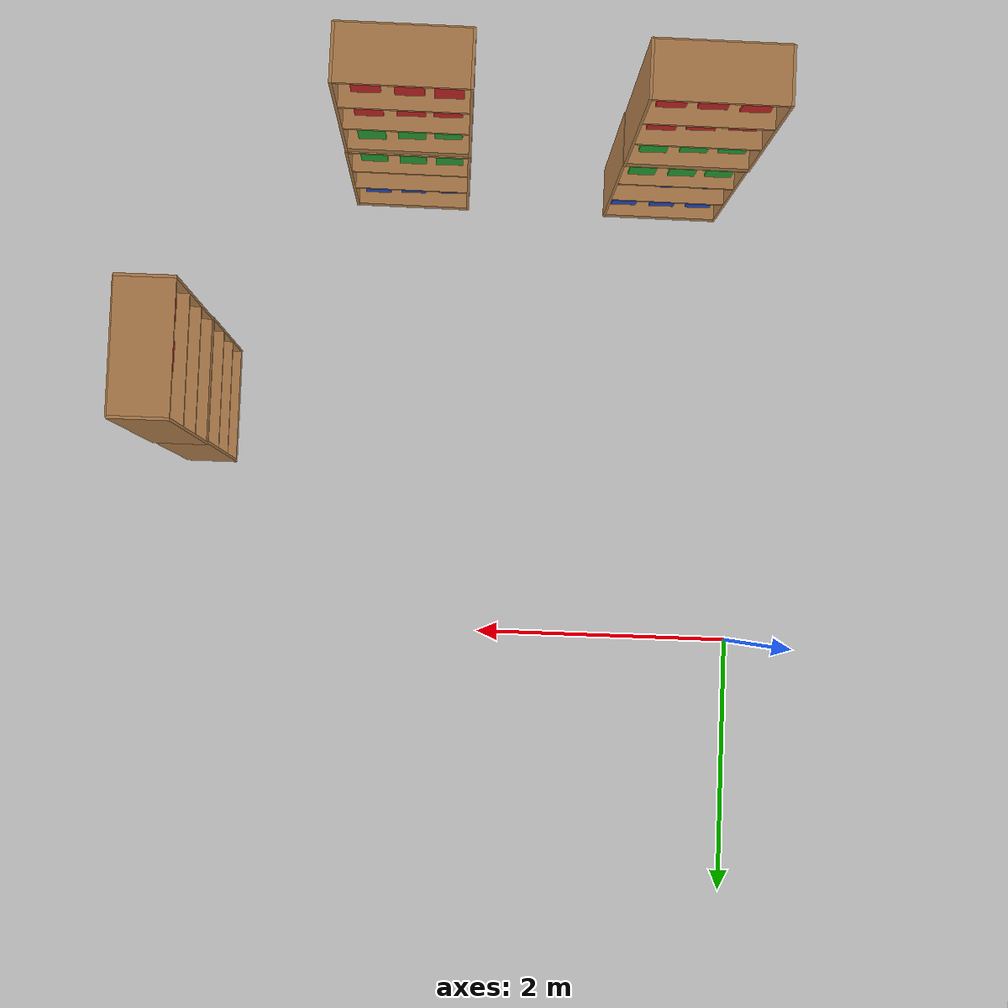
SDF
<sdf version="1.6">
 <world name="default">
  <model name="ground_plane">
   <static>1</static>
   <link name="link">
    <collision name="collision">
     <geometry><plane><normal>0 0 1</normal><size>100 100</size></plane></geometry>
     <surface><friction><ode><mu>100</mu><mu2>50</mu2></ode></friction></surface>
    </collision>
    <visual name="visual">
     <cast_shadows>0</cast_shadows>
     <geometry><plane><normal>0 0 1</normal><size>100 100</size></plane></geometry>
     <material>
      <script><uri>file://media/materials/scripts/gazebo.material</uri><name>Gazebo/Grey</name></script>
     </material>
    </visual>
   </link>
  </model>
  <model name="bookshelf_5">
   <static>1</static>
   <link name="link">
    <inertial><mass>1</mass></inertial>
    <collision name="back">
     <pose>0 0.005 0.6 0 -0 0</pose>
     <geometry><box><size>0.9 0.01 1.2</size></box></geometry>
    </collision>
    <visual name="visual1">
     <pose>0 0.005 0.6 0 -0 0</pose>
     <geometry><box><size>0.9 0.01 1.2</size></box></geometry>
     <material>
      <script><uri>file://media/materials/scripts/gazebo.material</uri><name>Gazebo/Wood</name></script>
     </material>
    </visual>
    <collision name="left_side">
     <pose>0.45 -0.195 0.6 0 -0 0</pose>
     <geometry><box><size>0.02 0.4 1.2</size></box></geometry>
    </collision>
    <visual name="visual2">
     <pose>0.45 -0.195 0.6 0 -0 0</pose>
     <geometry><box><size>0.02 0.4 1.2</size></box></geometry>
     <material>
      <script><uri>file://media/materials/scripts/gazebo.material</uri><name>Gazebo/Wood</name></script>
     </material>
    </visual>
    <collision name="right_side">
     <pose>-0.45 -0.195 0.6 0 -0 0</pose>
     <geometry><box><size>0.02 0.4 1.2</size></box></geometry>
    </collision>
    <visual name="visual3">
     <pose>-0.45 -0.195 0.6 0 -0 0</pose>
     <geometry><box><size>0.02 0.4 1.2</size></box></geometry>
     <material>
      <script><uri>file://media/materials/scripts/gazebo.material</uri><name>Gazebo/Wood</name></script>
     </material>
    </visual>
    <collision name="bottom">
     <pose>0 -0.195 0.03 0 -0 0</pose>
     <geometry><box><size>0.88 0.4 0.06</size></box></geometry>
    </collision>
    <visual name="visual4">
     <pose>0 -0.195 0.03 0 -0 0</pose>
     <geometry><box><size>0.88 0.4 0.06</size></box></geometry>
     <material>
      <script><uri>file://media/materials/scripts/gazebo.material</uri><name>Gazebo/Wood</name></script>
     </material>
    </visual>
    <collision name="top">
     <pose>0 -0.195 1.19 0 -0 0</pose>
     <geometry><box><size>0.88 0.4 0.02</size></box></geometry>
    </collision>
    <visual name="visual5">
     <pose>0 -0.195 1.19 0 -0 0</pose>
     <geometry><box><size>0.88 0.4 0.02</size></box></geometry>
     <material>
      <script><uri>file://media/materials/scripts/gazebo.material</uri><name>Gazebo/Wood</name></script>
     </material>
    </visual>
    <collision name="low_shelf">
     <pose>0 -0.195 0.43 0 -0 0</pose>
     <geometry><box><size>0.88 0.4 0.02</size></box></geometry>
    </collision>
    <visual name="visual6">
     <pose>0 -0.195 0.43 0 -0 0</pose>
     <geometry><box><size>0.88 0.4 0.02</size></box></geometry>
     <material>
      <script><uri>file://media/materials/scripts/gazebo.material</uri><name>Gazebo/Wood</name></script>
     </material>
    </visual>
    <collision name="high_shelf">
     <pose>0 -0.195 0.8 0 -0 0</pose>
     <geometry><box><size>0.88 0.4 0.02</size></box></geometry>
    </collision>
    <visual name="visual7">
     <pose>0 -0.195 0.8 0 -0 0</pose>
     <geometry><box><size>0.88 0.4 0.02</size></box></geometry>
     <material>
      <script><uri>file://media/materials/scripts/gazebo.material</uri><name>Gazebo/Wood</name></script>
     </material>
    </visual>
   </link>
   <pose>2.65151 -3.85953 0 0 -0 3.12955</pose>
  </model>
  <model name="bookshelf_5_clone_0">
   <static>1</static>
   <link name="link">
    <inertial><mass>1</mass></inertial>
    <collision name="back">
     <pose>0 0.005 0.6 0 -0 0</pose>
     <geometry><box><size>0.9 0.01 1.2</size></box></geometry>
    </collision>
    <visual name="visual1">
     <pose>0 0.005 0.6 0 -0 0</pose>
     <geometry><box><size>0.9 0.01 1.2</size></box></geometry>
     <material>
      <script><uri>file://media/materials/scripts/gazebo.material</uri><name>Gazebo/Wood</name></script>
     </material>
    </visual>
    <collision name="left_side">
     <pose>0.45 -0.195 0.6 0 -0 0</pose>
     <geometry><box><size>0.02 0.4 1.2</size></box></geometry>
    </collision>
    <visual name="visual2">
     <pose>0.45 -0.195 0.6 0 -0 0</pose>
     <geometry><box><size>0.02 0.4 1.2</size></box></geometry>
     <material>
      <script><uri>file://media/materials/scripts/gazebo.material</uri><name>Gazebo/Wood</name></script>
     </material>
    </visual>
    <collision name="right_side">
     <pose>-0.45 -0.195 0.6 0 -0 0</pose>
     <geometry><box><size>0.02 0.4 1.2</size></box></geometry>
    </collision>
    <visual name="visual3">
     <pose>-0.45 -0.195 0.6 0 -0 0</pose>
     <geometry><box><size>0.02 0.4 1.2</size></box></geometry>
     <material>
      <script><uri>file://media/materials/scripts/gazebo.material</uri><name>Gazebo/Wood</name></script>
     </material>
    </visual>
    <collision name="bottom">
     <pose>0 -0.195 0.03 0 -0 0</pose>
     <geometry><box><size>0.88 0.4 0.06</size></box></geometry>
    </collision>
    <visual name="visual4">
     <pose>0 -0.195 0.03 0 -0 0</pose>
     <geometry><box><size>0.88 0.4 0.06</size></box></geometry>
     <material>
      <script><uri>file://media/materials/scripts/gazebo.material</uri><name>Gazebo/Wood</name></script>
     </material>
    </visual>
    <collision name="top">
     <pose>0 -0.195 1.19 0 -0 0</pose>
     <geometry><box><size>0.88 0.4 0.02</size></box></geometry>
    </collision>
    <visual name="visual5">
     <pose>0 -0.195 1.19 0 -0 0</pose>
     <geometry><box><size>0.88 0.4 0.02</size></box></geometry>
     <material>
      <script><uri>file://media/materials/scripts/gazebo.material</uri><name>Gazebo/Wood</name></script>
     </material>
    </visual>
    <collision name="low_shelf">
     <pose>0 -0.195 0.43 0 -0 0</pose>
     <geometry><box><size>0.88 0.4 0.02</size></box></geometry>
    </collision>
    <visual name="visual6">
     <pose>0 -0.195 0.43 0 -0 0</pose>
     <geometry><box><size>0.88 0.4 0.02</size></box></geometry>
     <material>
      <script><uri>file://media/materials/scripts/gazebo.material</uri><name>Gazebo/Wood</name></script>
     </material>
    </visual>
    <collision name="high_shelf">
     <pose>0 -0.195 0.8 0 -0 0</pose>
     <geometry><box><size>0.88 0.4 0.02</size></box></geometry>
    </collision>
    <visual name="visual7">
     <pose>0 -0.195 0.8 0 -0 0</pose>
     <geometry><box><size>0.88 0.4 0.02</size></box></geometry>
     <material>
      <script><uri>file://media/materials/scripts/gazebo.material</uri><name>Gazebo/Wood</name></script>
     </material>
    </visual>
   </link>
   <pose>0.624398 -3.83719 0 0 -0 3.12955</pose>
  </model>
  <model name="bookshelf_5_clone">
   <static>1</static>
   <link name="link">
    <inertial><mass>1</mass></inertial>
    <collision name="back">
     <pose>0 0.005 0.6 0 -0 0</pose>
     <geometry><box><size>0.9 0.01 1.2</size></box></geometry>
    </collision>
    <visual name="visual1">
     <pose>0 0.005 0.6 0 -0 0</pose>
     <geometry><box><size>0.9 0.01 1.2</size></box></geometry>
     <material>
      <script><uri>file://media/materials/scripts/gazebo.material</uri><name>Gazebo/Wood</name></script>
     </material>
    </visual>
    <collision name="left_side">
     <pose>0.45 -0.195 0.6 0 -0 0</pose>
     <geometry><box><size>0.02 0.4 1.2</size></box></geometry>
    </collision>
    <visual name="visual2">
     <pose>0.45 -0.195 0.6 0 -0 0</pose>
     <geometry><box><size>0.02 0.4 1.2</size></box></geometry>
     <material>
      <script><uri>file://media/materials/scripts/gazebo.material</uri><name>Gazebo/Wood</name></script>
     </material>
    </visual>
    <collision name="right_side">
     <pose>-0.45 -0.195 0.6 0 -0 0</pose>
     <geometry><box><size>0.02 0.4 1.2</size></box></geometry>
    </collision>
    <visual name="visual3">
     <pose>-0.45 -0.195 0.6 0 -0 0</pose>
     <geometry><box><size>0.02 0.4 1.2</size></box></geometry>
     <material>
      <script><uri>file://media/materials/scripts/gazebo.material</uri><name>Gazebo/Wood</name></script>
     </material>
    </visual>
    <collision name="bottom">
     <pose>0 -0.195 0.03 0 -0 0</pose>
     <geometry><box><size>0.88 0.4 0.06</size></box></geometry>
    </collision>
    <visual name="visual4">
     <pose>0 -0.195 0.03 0 -0 0</pose>
     <geometry><box><size>0.88 0.4 0.06</size></box></geometry>
     <material>
      <script><uri>file://media/materials/scripts/gazebo.material</uri><name>Gazebo/Wood</name></script>
     </material>
    </visual>
    <collision name="top">
     <pose>0 -0.195 1.19 0 -0 0</pose>
     <geometry><box><size>0.88 0.4 0.02</size></box></geometry>
    </collision>
    <visual name="visual5">
     <pose>0 -0.195 1.19 0 -0 0</pose>
     <geometry><box><size>0.88 0.4 0.02</size></box></geometry>
     <material>
      <script><uri>file://media/materials/scripts/gazebo.material</uri><name>Gazebo/Wood</name></script>
     </material>
    </visual>
    <collision name="low_shelf">
     <pose>0 -0.195 0.43 0 -0 0</pose>
     <geometry><box><size>0.88 0.4 0.02</size></box></geometry>
    </collision>
    <visual name="visual6">
     <pose>0 -0.195 0.43 0 -0 0</pose>
     <geometry><box><size>0.88 0.4 0.02</size></box></geometry>
     <material>
      <script><uri>file://media/materials/scripts/gazebo.material</uri><name>Gazebo/Wood</name></script>
     </material>
    </visual>
    <collision name="high_shelf">
     <pose>0 -0.195 0.8 0 -0 0</pose>
     <geometry><box><size>0.88 0.4 0.02</size></box></geometry>
    </collision>
    <visual name="visual7">
     <pose>0 -0.195 0.8 0 -0 0</pose>
     <geometry><box><size>0.88 0.4 0.02</size></box></geometry>
     <material>
      <script><uri>file://media/materials/scripts/gazebo.material</uri><name>Gazebo/Wood</name></script>
     </material>
    </visual>
   </link>
   <pose>2.64795 -3.86432 1.21139 0 -0 3.12955</pose>
  </model>
  <model name="bookshelf_5_clone_clone">
   <static>1</static>
   <link name="link">
    <inertial><mass>1</mass></inertial>
    <collision name="back">
     <pose>0 0.005 0.6 0 -0 0</pose>
     <geometry><box><size>0.9 0.01 1.2</size></box></geometry>
    </collision>
    <visual name="visual1">
     <pose>0 0.005 0.6 0 -0 0</pose>
     <geometry><box><size>0.9 0.01 1.2</size></box></geometry>
     <material>
      <script><uri>file://media/materials/scripts/gazebo.material</uri><name>Gazebo/Wood</name></script>
     </material>
    </visual>
    <collision name="left_side">
     <pose>0.45 -0.195 0.6 0 -0 0</pose>
     <geometry><box><size>0.02 0.4 1.2</size></box></geometry>
    </collision>
    <visual name="visual2">
     <pose>0.45 -0.195 0.6 0 -0 0</pose>
     <geometry><box><size>0.02 0.4 1.2</size></box></geometry>
     <material>
      <script><uri>file://media/materials/scripts/gazebo.material</uri><name>Gazebo/Wood</name></script>
     </material>
    </visual>
    <collision name="right_side">
     <pose>-0.45 -0.195 0.6 0 -0 0</pose>
     <geometry><box><size>0.02 0.4 1.2</size></box></geometry>
    </collision>
    <visual name="visual3">
     <pose>-0.45 -0.195 0.6 0 -0 0</pose>
     <geometry><box><size>0.02 0.4 1.2</size></box></geometry>
     <material>
      <script><uri>file://media/materials/scripts/gazebo.material</uri><name>Gazebo/Wood</name></script>
     </material>
    </visual>
    <collision name="bottom">
     <pose>0 -0.195 0.03 0 -0 0</pose>
     <geometry><box><size>0.88 0.4 0.06</size></box></geometry>
    </collision>
    <visual name="visual4">
     <pose>0 -0.195 0.03 0 -0 0</pose>
     <geometry><box><size>0.88 0.4 0.06</size></box></geometry>
     <material>
      <script><uri>file://media/materials/scripts/gazebo.material</uri><name>Gazebo/Wood</name></script>
     </material>
    </visual>
    <collision name="top">
     <pose>0 -0.195 1.19 0 -0 0</pose>
     <geometry><box><size>0.88 0.4 0.02</size></box></geometry>
    </collision>
    <visual name="visual5">
     <pose>0 -0.195 1.19 0 -0 0</pose>
     <geometry><box><size>0.88 0.4 0.02</size></box></geometry>
     <material>
      <script><uri>file://media/materials/scripts/gazebo.material</uri><name>Gazebo/Wood</name></script>
     </material>
    </visual>
    <collision name="low_shelf">
     <pose>0 -0.195 0.43 0 -0 0</pose>
     <geometry><box><size>0.88 0.4 0.02</size></box></geometry>
    </collision>
    <visual name="visual6">
     <pose>0 -0.195 0.43 0 -0 0</pose>
     <geometry><box><size>0.88 0.4 0.02</size></box></geometry>
     <material>
      <script><uri>file://media/materials/scripts/gazebo.material</uri><name>Gazebo/Wood</name></script>
     </material>
    </visual>
    <collision name="high_shelf">
     <pose>0 -0.195 0.8 0 -0 0</pose>
     <geometry><box><size>0.88 0.4 0.02</size></box></geometry>
    </collision>
    <visual name="visual7">
     <pose>0 -0.195 0.8 0 -0 0</pose>
     <geometry><box><size>0.88 0.4 0.02</size></box></geometry>
     <material>
      <script><uri>file://media/materials/scripts/gazebo.material</uri><name>Gazebo/Wood</name></script>
     </material>
    </visual>
   </link>
   <pose>0.620317 -3.82873 1.21139 0 -0 3.12955</pose>
  </model>
  <model name="bookshelf_4_clone_clone">
   <static>1</static>
   <link name="link">
    <inertial><mass>1</mass></inertial>
    <collision name="back">
     <pose>0 0.005 0.6 0 -0 0</pose>
     <geometry><box><size>0.9 0.01 1.2</size></box></geometry>
    </collision>
    <visual name="visual1">
     <pose>0 0.005 0.6 0 -0 0</pose>
     <geometry><box><size>0.9 0.01 1.2</size></box></geometry>
     <material>
      <script><uri>file://media/materials/scripts/gazebo.material</uri><name>Gazebo/Wood</name></script>
     </material>
    </visual>
    <collision name="left_side">
     <pose>0.45 -0.195 0.6 0 -0 0</pose>
     <geometry><box><size>0.02 0.4 1.2</size></box></geometry>
    </collision>
    <visual name="visual2">
     <pose>0.45 -0.195 0.6 0 -0 0</pose>
     <geometry><box><size>0.02 0.4 1.2</size></box></geometry>
     <material>
      <script><uri>file://media/materials/scripts/gazebo.material</uri><name>Gazebo/Wood</name></script>
     </material>
    </visual>
    <collision name="right_side">
     <pose>-0.45 -0.195 0.6 0 -0 0</pose>
     <geometry><box><size>0.02 0.4 1.2</size></box></geometry>
    </collision>
    <visual name="visual3">
     <pose>-0.45 -0.195 0.6 0 -0 0</pose>
     <geometry><box><size>0.02 0.4 1.2</size></box></geometry>
     <material>
      <script><uri>file://media/materials/scripts/gazebo.material</uri><name>Gazebo/Wood</name></script>
     </material>
    </visual>
    <collision name="bottom">
     <pose>0 -0.195 0.03 0 -0 0</pose>
     <geometry><box><size>0.88 0.4 0.06</size></box></geometry>
    </collision>
    <visual name="visual4">
     <pose>0 -0.195 0.03 0 -0 0</pose>
     <geometry><box><size>0.88 0.4 0.06</size></box></geometry>
     <material>
      <script><uri>file://media/materials/scripts/gazebo.material</uri><name>Gazebo/Wood</name></script>
     </material>
    </visual>
    <collision name="top">
     <pose>0 -0.195 1.19 0 -0 0</pose>
     <geometry><box><size>0.88 0.4 0.02</size></box></geometry>
    </collision>
    <visual name="visual5">
     <pose>0 -0.195 1.19 0 -0 0</pose>
     <geometry><box><size>0.88 0.4 0.02</size></box></geometry>
     <material>
      <script><uri>file://media/materials/scripts/gazebo.material</uri><name>Gazebo/Wood</name></script>
     </material>
    </visual>
    <collision name="low_shelf">
     <pose>0 -0.195 0.43 0 -0 0</pose>
     <geometry><box><size>0.88 0.4 0.02</size></box></geometry>
    </collision>
    <visual name="visual6">
     <pose>0 -0.195 0.43 0 -0 0</pose>
     <geometry><box><size>0.88 0.4 0.02</size></box></geometry>
     <material>
      <script><uri>file://media/materials/scripts/gazebo.material</uri><name>Gazebo/Wood</name></script>
     </material>
    </visual>
    <collision name="high_shelf">
     <pose>0 -0.195 0.8 0 -0 0</pose>
     <geometry><box><size>0.88 0.4 0.02</size></box></geometry>
    </collision>
    <visual name="visual7">
     <pose>0 -0.195 0.8 0 -0 0</pose>
     <geometry><box><size>0.88 0.4 0.02</size></box></geometry>
     <material>
      <script><uri>file://media/materials/scripts/gazebo.material</uri><name>Gazebo/Wood</name></script>
     </material>
    </visual>
   </link>
   <pose>4.40573 -1.76165 0 0 0 -1.5727</pose>
  </model>
  <model name="bookshelf_4_clone_1_clone_clone_clone">
   <static>1</static>
   <link name="link">
    <inertial><mass>1</mass></inertial>
    <collision name="back">
     <pose>0 0.005 0.6 0 -0 0</pose>
     <geometry><box><size>0.9 0.01 1.2</size></box></geometry>
    </collision>
    <visual name="visual1">
     <pose>0 0.005 0.6 0 -0 0</pose>
     <geometry><box><size>0.9 0.01 1.2</size></box></geometry>
     <material>
      <script><uri>file://media/materials/scripts/gazebo.material</uri><name>Gazebo/Wood</name></script>
     </material>
    </visual>
    <collision name="left_side">
     <pose>0.45 -0.195 0.6 0 -0 0</pose>
     <geometry><box><size>0.02 0.4 1.2</size></box></geometry>
    </collision>
    <visual name="visual2">
     <pose>0.45 -0.195 0.6 0 -0 0</pose>
     <geometry><box><size>0.02 0.4 1.2</size></box></geometry>
     <material>
      <script><uri>file://media/materials/scripts/gazebo.material</uri><name>Gazebo/Wood</name></script>
     </material>
    </visual>
    <collision name="right_side">
     <pose>-0.45 -0.195 0.6 0 -0 0</pose>
     <geometry><box><size>0.02 0.4 1.2</size></box></geometry>
    </collision>
    <visual name="visual3">
     <pose>-0.45 -0.195 0.6 0 -0 0</pose>
     <geometry><box><size>0.02 0.4 1.2</size></box></geometry>
     <material>
      <script><uri>file://media/materials/scripts/gazebo.material</uri><name>Gazebo/Wood</name></script>
     </material>
    </visual>
    <collision name="bottom">
     <pose>0 -0.195 0.03 0 -0 0</pose>
     <geometry><box><size>0.88 0.4 0.06</size></box></geometry>
    </collision>
    <visual name="visual4">
     <pose>0 -0.195 0.03 0 -0 0</pose>
     <geometry><box><size>0.88 0.4 0.06</size></box></geometry>
     <material>
      <script><uri>file://media/materials/scripts/gazebo.material</uri><name>Gazebo/Wood</name></script>
     </material>
    </visual>
    <collision name="top">
     <pose>0 -0.195 1.19 0 -0 0</pose>
     <geometry><box><size>0.88 0.4 0.02</size></box></geometry>
    </collision>
    <visual name="visual5">
     <pose>0 -0.195 1.19 0 -0 0</pose>
     <geometry><box><size>0.88 0.4 0.02</size></box></geometry>
     <material>
      <script><uri>file://media/materials/scripts/gazebo.material</uri><name>Gazebo/Wood</name></script>
     </material>
    </visual>
    <collision name="low_shelf">
     <pose>0 -0.195 0.43 0 -0 0</pose>
     <geometry><box><size>0.88 0.4 0.02</size></box></geometry>
    </collision>
    <visual name="visual6">
     <pose>0 -0.195 0.43 0 -0 0</pose>
     <geometry><box><size>0.88 0.4 0.02</size></box></geometry>
     <material>
      <script><uri>file://media/materials/scripts/gazebo.material</uri><name>Gazebo/Wood</name></script>
     </material>
    </visual>
    <collision name="high_shelf">
     <pose>0 -0.195 0.8 0 -0 0</pose>
     <geometry><box><size>0.88 0.4 0.02</size></box></geometry>
    </collision>
    <visual name="visual7">
     <pose>0 -0.195 0.8 0 -0 0</pose>
     <geometry><box><size>0.88 0.4 0.02</size></box></geometry>
     <material>
      <script><uri>file://media/materials/scripts/gazebo.material</uri><name>Gazebo/Wood</name></script>
     </material>
    </visual>
   </link>
   <pose>4.40422 -1.75184 1.20741 0 0 -1.5727</pose>
  </model>
  <model name="bluecube_0_clone_clone_10_clone_clone_9">
   <static>1</static>
   <link name="link">
    <pose>0 0 0.21 0 -0 0</pose>
    <collision name="collision"><geometry><box><size>0.2 0.02 0.3</size></box></geometry></collision>
    <visual name="visual">
     <geometry><box><size>0.2 0.02 0.3</size></box></geometry>
     <material>
      <script><uri>file://media/materials/scripts/gazebo.material</uri><name>Gazebo/Blue</name></script>
     </material>
    </visual>
   </link>
   <pose>2.93854 -3.60517 0.38097 0 -0 0</pose>
  </model>
  <model name="bluecube_0_clone_clone_10_clone_clone_10">
   <static>1</static>
   <link name="link">
    <pose>0 0 0.21 0 -0 0</pose>
    <collision name="collision"><geometry><box><size>0.2 0.02 0.3</size></box></geometry></collision>
    <visual name="visual">
     <geometry><box><size>0.2 0.02 0.3</size></box></geometry>
     <material>
      <script><uri>file://media/materials/scripts/gazebo.material</uri><name>Gazebo/Blue</name></script>
     </material>
    </visual>
   </link>
   <pose>2.6362 -3.60652 0.38097 0 -0 0</pose>
  </model>
  <model name="bluecube_0_clone_clone_10_clone_clone_11">
   <static>1</static>
   <link name="link">
    <pose>0 0 0.21 0 -0 0</pose>
    <collision name="collision"><geometry><box><size>0.2 0.02 0.3</size></box></geometry></collision>
    <visual name="visual">
     <geometry><box><size>0.2 0.02 0.3</size></box></geometry>
     <material>
      <script><uri>file://media/materials/scripts/gazebo.material</uri><name>Gazebo/Blue</name></script>
     </material>
    </visual>
   </link>
   <pose>2.34679 -3.61008 0.38097 0 -0 0</pose>
  </model>
  <model name="bluecube_0_clone_clone_10_clone_clone_12">
   <static>1</static>
   <link name="link">
    <pose>0 0 0.21 0 -0 0</pose>
    <collision name="collision"><geometry><box><size>0.2 0.02 0.3</size></box></geometry></collision>
    <visual name="visual">
     <geometry><box><size>0.2 0.02 0.3</size></box></geometry>
     <material>
      <script><uri>file://media/materials/scripts/gazebo.material</uri><name>Gazebo/Blue</name></script>
     </material>
    </visual>
   </link>
   <pose>0.917929 -3.5763 0.38097 0 -0 0</pose>
  </model>
  <model name="bluecube_0_clone_clone_10_clone_clone_13">
   <static>1</static>
   <link name="link">
    <pose>0 0 0.21 0 -0 0</pose>
    <collision name="collision"><geometry><box><size>0.2 0.02 0.3</size></box></geometry></collision>
    <visual name="visual">
     <geometry><box><size>0.2 0.02 0.3</size></box></geometry>
     <material>
      <script><uri>file://media/materials/scripts/gazebo.material</uri><name>Gazebo/Blue</name></script>
     </material>
    </visual>
   </link>
   <pose>0.604945 -3.56999 0.38097 0 -0 0</pose>
  </model>
  <model name="bluecube_0_clone_clone_10_clone_clone_14">
   <static>1</static>
   <link name="link">
    <pose>0 0 0.21 0 -0 0</pose>
    <collision name="collision"><geometry><box><size>0.2 0.02 0.3</size></box></geometry></collision>
    <visual name="visual">
     <geometry><box><size>0.2 0.02 0.3</size></box></geometry>
     <material>
      <script><uri>file://media/materials/scripts/gazebo.material</uri><name>Gazebo/Blue</name></script>
     </material>
    </visual>
   </link>
   <pose>0.315119 -3.56865 0.38097 0 -0 0</pose>
  </model>
  <model name="bluecube_0_clone_clone_9_clone">
   <static>1</static>
   <link name="link">
    <pose>0 0 0.21 0 -0 0</pose>
    <collision name="collision"><geometry><box><size>0.2 0.02 0.3</size></box></geometry></collision>
    <visual name="visual">
     <geometry><box><size>0.2 0.02 0.3</size></box></geometry>
     <material>
      <script><uri>file://media/materials/scripts/gazebo.material</uri><name>Gazebo/Blue</name></script>
     </material>
    </visual>
   </link>
   <pose>2.93796 -3.57341 0 0 -0 0</pose>
  </model>
  <model name="bluecube_0_clone_clone_9_clone_0">
   <static>1</static>
   <link name="link">
    <pose>0 0 0.21 0 -0 0</pose>
    <collision name="collision"><geometry><box><size>0.2 0.02 0.3</size></box></geometry></collision>
    <visual name="visual">
     <geometry><box><size>0.2 0.02 0.3</size></box></geometry>
     <material>
      <script><uri>file://media/materials/scripts/gazebo.material</uri><name>Gazebo/Blue</name></script>
     </material>
    </visual>
   </link>
   <pose>2.64925 -3.57936 0 0 -0 0</pose>
  </model>
  <model name="bluecube_0_clone_clone_9_clone_1">
   <static>1</static>
   <link name="link">
    <pose>0 0 0.21 0 -0 0</pose>
    <collision name="collision"><geometry><box><size>0.2 0.02 0.3</size></box></geometry></collision>
    <visual name="visual">
     <geometry><box><size>0.2 0.02 0.3</size></box></geometry>
     <material>
      <script><uri>file://media/materials/scripts/gazebo.material</uri><name>Gazebo/Blue</name></script>
     </material>
    </visual>
   </link>
   <pose>2.34943 -3.58554 0 0 -0 0</pose>
  </model>
  <model name="bluecube_0_clone_clone_9_clone_2">
   <static>1</static>
   <link name="link">
    <pose>0 0 0.21 0 -0 0</pose>
    <collision name="collision"><geometry><box><size>0.2 0.02 0.3</size></box></geometry></collision>
    <visual name="visual">
     <geometry><box><size>0.2 0.02 0.3</size></box></geometry>
     <material>
      <script><uri>file://media/materials/scripts/gazebo.material</uri><name>Gazebo/Blue</name></script>
     </material>
    </visual>
   </link>
   <pose>0.927892 -3.54486 0 0 -0 0</pose>
  </model>
  <model name="bluecube_0_clone_clone_9_clone_3">
   <static>1</static>
   <link name="link">
    <pose>0 0 0.21 0 -0 0</pose>
    <collision name="collision"><geometry><box><size>0.2 0.02 0.3</size></box></geometry></collision>
    <visual name="visual">
     <geometry><box><size>0.2 0.02 0.3</size></box></geometry>
     <material>
      <script><uri>file://media/materials/scripts/gazebo.material</uri><name>Gazebo/Blue</name></script>
     </material>
    </visual>
   </link>
   <pose>0.619055 -3.54325 0 0 -0 0</pose>
  </model>
  <model name="bluecube_0_clone_clone_9_clone_4">
   <static>1</static>
   <link name="link">
    <pose>0 0 0.21 0 -0 0</pose>
    <collision name="collision"><geometry><box><size>0.2 0.02 0.3</size></box></geometry></collision>
    <visual name="visual">
     <geometry><box><size>0.2 0.02 0.3</size></box></geometry>
     <material>
      <script><uri>file://media/materials/scripts/gazebo.material</uri><name>Gazebo/Blue</name></script>
     </material>
    </visual>
   </link>
   <pose>0.32248 -3.54142 0 0 -0 0</pose>
  </model>
  <model name="bluecube_0_clone_clone_9_clone_11_clone_clone_7">
   <static>1</static>
   <link name="link">
    <pose>0 0 0.21 0 -0 0</pose>
    <collision name="collision"><geometry><box><size>0.2 0.02 0.3</size></box></geometry></collision>
    <visual name="visual">
     <geometry><box><size>0.2 0.02 0.3</size></box></geometry>
     <material>
      <script><uri>file://media/materials/scripts/gazebo.material</uri><name>Gazebo/Blue</name></script>
     </material>
    </visual>
   </link>
   <pose>4.09975 -1.75712 0 0 -0 1.57146</pose>
  </model>
  <model name="bluecube_0_clone_clone_9_clone_11_clone_clone_8">
   <static>1</static>
   <link name="link">
    <pose>0 0 0.21 0 -0 0</pose>
    <collision name="collision"><geometry><box><size>0.2 0.02 0.3</size></box></geometry></collision>
    <visual name="visual">
     <geometry><box><size>0.2 0.02 0.3</size></box></geometry>
     <material>
      <script><uri>file://media/materials/scripts/gazebo.material</uri><name>Gazebo/Blue</name></script>
     </material>
    </visual>
   </link>
   <pose>4.10612 -2.04471 0 0 -0 1.57146</pose>
  </model>
  <model name="bluecube_0_clone_clone_10_clone_clone_21_clone_clone_8">
   <static>1</static>
   <link name="link">
    <pose>0 0 0.21 0 -0 0</pose>
    <collision name="collision"><geometry><box><size>0.2 0.02 0.3</size></box></geometry></collision>
    <visual name="visual">
     <geometry><box><size>0.2 0.02 0.3</size></box></geometry>
     <material>
      <script><uri>file://media/materials/scripts/gazebo.material</uri><name>Gazebo/Blue</name></script>
     </material>
    </visual>
   </link>
   <pose>4.13681 -1.75513 0.38097 0 -0 1.5507</pose>
  </model>
  <model name="bluecube_0_clone_clone_10_clone_clone_21_clone_clone_9">
   <static>1</static>
   <link name="link">
    <pose>0 0 0.21 0 -0 0</pose>
    <collision name="collision"><geometry><box><size>0.2 0.02 0.3</size></box></geometry></collision>
    <visual name="visual">
     <geometry><box><size>0.2 0.02 0.3</size></box></geometry>
     <material>
      <script><uri>file://media/materials/scripts/gazebo.material</uri><name>Gazebo/Blue</name></script>
     </material>
    </visual>
   </link>
   <pose>4.13695 -2.04965 0.38097 0 -0 1.5507</pose>
  </model>
  <model name="greencube_clone_clone_10">
   <static>1</static>
   <link name="link">
    <pose>0 0 0.21 0 -0 0</pose>
    <collision name="collision"><geometry><box><size>0.2 0.02 0.3</size></box></geometry></collision>
    <visual name="visual">
     <geometry><box><size>0.2 0.02 0.3</size></box></geometry>
     <material>
      <script><uri>file://media/materials/scripts/gazebo.material</uri><name>Gazebo/Green</name></script>
     </material>
    </visual>
   </link>
   <pose>2.92226 -3.56232 0.751098 0 -0 0</pose>
  </model>
  <model name="greencube_clone_clone_11">
   <static>1</static>
   <link name="link">
    <pose>0 0 0.21 0 -0 0</pose>
    <collision name="collision"><geometry><box><size>0.2 0.02 0.3</size></box></geometry></collision>
    <visual name="visual">
     <geometry><box><size>0.2 0.02 0.3</size></box></geometry>
     <material>
      <script><uri>file://media/materials/scripts/gazebo.material</uri><name>Gazebo/Green</name></script>
     </material>
    </visual>
   </link>
   <pose>2.62847 -3.55385 0.751098 0 -0 0</pose>
  </model>
  <model name="greencube_clone_clone_12">
   <static>1</static>
   <link name="link">
    <pose>0 0 0.21 0 -0 0</pose>
    <collision name="collision"><geometry><box><size>0.2 0.02 0.3</size></box></geometry></collision>
    <visual name="visual">
     <geometry><box><size>0.2 0.02 0.3</size></box></geometry>
     <material>
      <script><uri>file://media/materials/scripts/gazebo.material</uri><name>Gazebo/Green</name></script>
     </material>
    </visual>
   </link>
   <pose>2.35494 -3.55414 0.751098 0 -0 0</pose>
  </model>
  <model name="greencube_clone_clone_13">
   <static>1</static>
   <link name="link">
    <pose>0 0 0.21 0 -0 0</pose>
    <collision name="collision"><geometry><box><size>0.2 0.02 0.3</size></box></geometry></collision>
    <visual name="visual">
     <geometry><box><size>0.2 0.02 0.3</size></box></geometry>
     <material>
      <script><uri>file://media/materials/scripts/gazebo.material</uri><name>Gazebo/Green</name></script>
     </material>
    </visual>
   </link>
   <pose>0.896836 -3.53313 0.751098 0 -0 0</pose>
  </model>
  <model name="greencube_clone_clone_14">
   <static>1</static>
   <link name="link">
    <pose>0 0 0.21 0 -0 0</pose>
    <collision name="collision"><geometry><box><size>0.2 0.02 0.3</size></box></geometry></collision>
    <visual name="visual">
     <geometry><box><size>0.2 0.02 0.3</size></box></geometry>
     <material>
      <script><uri>file://media/materials/scripts/gazebo.material</uri><name>Gazebo/Green</name></script>
     </material>
    </visual>
   </link>
   <pose>0.594511 -3.5347 0.751098 0 -0 0</pose>
  </model>
  <model name="greencube_clone_clone_15">
   <static>1</static>
   <link name="link">
    <pose>0 0 0.21 0 -0 0</pose>
    <collision name="collision"><geometry><box><size>0.2 0.02 0.3</size></box></geometry></collision>
    <visual name="visual">
     <geometry><box><size>0.2 0.02 0.3</size></box></geometry>
     <material>
      <script><uri>file://media/materials/scripts/gazebo.material</uri><name>Gazebo/Green</name></script>
     </material>
    </visual>
   </link>
   <pose>0.317257 -3.53505 0.751098 0 -0 0</pose>
  </model>
  <model name="greencube_clone_clone_22_clone_clone_8">
   <static>1</static>
   <link name="link">
    <pose>0 0 0.21 0 -0 0</pose>
    <collision name="collision"><geometry><box><size>0.2 0.02 0.3</size></box></geometry></collision>
    <visual name="visual">
     <geometry><box><size>0.2 0.02 0.3</size></box></geometry>
     <material>
      <script><uri>file://media/materials/scripts/gazebo.material</uri><name>Gazebo/Green</name></script>
     </material>
    </visual>
   </link>
   <pose>4.13782 -1.74821 0.751098 0 -0 1.56837</pose>
  </model>
  <model name="greencube_clone_clone_22_clone_clone_9">
   <static>1</static>
   <link name="link">
    <pose>0 0 0.21 0 -0 0</pose>
    <collision name="collision"><geometry><box><size>0.2 0.02 0.3</size></box></geometry></collision>
    <visual name="visual">
     <geometry><box><size>0.2 0.02 0.3</size></box></geometry>
     <material>
      <script><uri>file://media/materials/scripts/gazebo.material</uri><name>Gazebo/Green</name></script>
     </material>
    </visual>
   </link>
   <pose>4.14742 -2.0364 0.751098 0 -0 1.56837</pose>
  </model>
  <model name="greencube_clone_clone_0_clone_clone_clone_10">
   <static>1</static>
   <link name="link">
    <pose>0 0 0.21 0 -0 0</pose>
    <collision name="collision"><geometry><box><size>0.2 0.02 0.3</size></box></geometry></collision>
    <visual name="visual">
     <geometry><box><size>0.2 0.02 0.3</size></box></geometry>
     <material>
      <script><uri>file://media/materials/scripts/gazebo.material</uri><name>Gazebo/Green</name></script>
     </material>
    </visual>
   </link>
   <pose>2.91053 -3.56068 1.20525 0 -0 0</pose>
  </model>
  <model name="greencube_clone_clone_0_clone_clone_clone_11">
   <static>1</static>
   <link name="link">
    <pose>0 0 0.21 0 -0 0</pose>
    <collision name="collision"><geometry><box><size>0.2 0.02 0.3</size></box></geometry></collision>
    <visual name="visual">
     <geometry><box><size>0.2 0.02 0.3</size></box></geometry>
     <material>
      <script><uri>file://media/materials/scripts/gazebo.material</uri><name>Gazebo/Green</name></script>
     </material>
    </visual>
   </link>
   <pose>2.6221 -3.5696 1.20525 0 -0 0</pose>
  </model>
  <model name="greencube_clone_clone_0_clone_clone_clone_12">
   <static>1</static>
   <link name="link">
    <pose>0 0 0.21 0 -0 0</pose>
    <collision name="collision"><geometry><box><size>0.2 0.02 0.3</size></box></geometry></collision>
    <visual name="visual">
     <geometry><box><size>0.2 0.02 0.3</size></box></geometry>
     <material>
      <script><uri>file://media/materials/scripts/gazebo.material</uri><name>Gazebo/Green</name></script>
     </material>
    </visual>
   </link>
   <pose>2.35919 -3.57709 1.20525 0 -0 0</pose>
  </model>
  <model name="greencube_clone_clone_0_clone_clone_clone_13">
   <static>1</static>
   <link name="link">
    <pose>0 0 0.21 0 -0 0</pose>
    <collision name="collision"><geometry><box><size>0.2 0.02 0.3</size></box></geometry></collision>
    <visual name="visual">
     <geometry><box><size>0.2 0.02 0.3</size></box></geometry>
     <material>
      <script><uri>file://media/materials/scripts/gazebo.material</uri><name>Gazebo/Green</name></script>
     </material>
    </visual>
   </link>
   <pose>0.885461 -3.53714 1.20525 0 -0 0</pose>
  </model>
  <model name="greencube_clone_clone_0_clone_clone_clone_14">
   <static>1</static>
   <link name="link">
    <pose>0 0 0.21 0 -0 0</pose>
    <collision name="collision"><geometry><box><size>0.2 0.02 0.3</size></box></geometry></collision>
    <visual name="visual">
     <geometry><box><size>0.2 0.02 0.3</size></box></geometry>
     <material>
      <script><uri>file://media/materials/scripts/gazebo.material</uri><name>Gazebo/Green</name></script>
     </material>
    </visual>
   </link>
   <pose>0.590484 -3.54675 1.20525 0 -0 0</pose>
  </model>
  <model name="greencube_clone_clone_0_clone_clone_clone_15">
   <static>1</static>
   <link name="link">
    <pose>0 0 0.21 0 -0 0</pose>
    <collision name="collision"><geometry><box><size>0.2 0.02 0.3</size></box></geometry></collision>
    <visual name="visual">
     <geometry><box><size>0.2 0.02 0.3</size></box></geometry>
     <material>
      <script><uri>file://media/materials/scripts/gazebo.material</uri><name>Gazebo/Green</name></script>
     </material>
    </visual>
   </link>
   <pose>0.315275 -3.54837 1.20525 0 -0 0</pose>
  </model>
  <model name="greencube_clone_clone_22_clone_clone_10_clone_clone_clone_20">
   <static>1</static>
   <link name="link">
    <pose>0 0 0.21 0 -0 0</pose>
    <collision name="collision"><geometry><box><size>0.2 0.02 0.3</size></box></geometry></collision>
    <visual name="visual">
     <geometry><box><size>0.2 0.02 0.3</size></box></geometry>
     <material>
      <script><uri>file://media/materials/scripts/gazebo.material</uri><name>Gazebo/Green</name></script>
     </material>
    </visual>
   </link>
   <pose>4.1114 -1.75059 1.21098 0 -0 1.56837</pose>
  </model>
  <model name="greencube_clone_clone_22_clone_clone_10_clone_clone_clone_21">
   <static>1</static>
   <link name="link">
    <pose>0 0 0.21 0 -0 0</pose>
    <collision name="collision"><geometry><box><size>0.2 0.02 0.3</size></box></geometry></collision>
    <visual name="visual">
     <geometry><box><size>0.2 0.02 0.3</size></box></geometry>
     <material>
      <script><uri>file://media/materials/scripts/gazebo.material</uri><name>Gazebo/Green</name></script>
     </material>
    </visual>
   </link>
   <pose>4.12571 -2.03416 1.21098 0 -0 1.56837</pose>
  </model>
  <model name="redcube_clone_clone_10">
   <static>1</static>
   <link name="link">
    <pose>0 0 0.21 0 -0 0</pose>
    <collision name="collision"><geometry><box><size>0.2 0.02 0.3</size></box></geometry></collision>
    <visual name="visual">
     <geometry><box><size>0.2 0.02 0.3</size></box></geometry>
     <material>
      <script><uri>file://media/materials/scripts/gazebo.material</uri><name>Gazebo/Red</name></script>
     </material>
    </visual>
   </link>
   <pose>2.90874 -3.57933 1.58534 0 -0 0</pose>
  </model>
  <model name="redcube_clone_clone_11">
   <static>1</static>
   <link name="link">
    <pose>0 0 0.21 0 -0 0</pose>
    <collision name="collision"><geometry><box><size>0.2 0.02 0.3</size></box></geometry></collision>
    <visual name="visual">
     <geometry><box><size>0.2 0.02 0.3</size></box></geometry>
     <material>
      <script><uri>file://media/materials/scripts/gazebo.material</uri><name>Gazebo/Red</name></script>
     </material>
    </visual>
   </link>
   <pose>2.61591 -3.58667 1.58534 0 -0 0</pose>
  </model>
  <model name="redcube_clone_clone_12">
   <static>1</static>
   <link name="link">
    <pose>0 0 0.21 0 -0 0</pose>
    <collision name="collision"><geometry><box><size>0.2 0.02 0.3</size></box></geometry></collision>
    <visual name="visual">
     <geometry><box><size>0.2 0.02 0.3</size></box></geometry>
     <material>
      <script><uri>file://media/materials/scripts/gazebo.material</uri><name>Gazebo/Red</name></script>
     </material>
    </visual>
   </link>
   <pose>2.36143 -3.58625 1.58534 0 -0 0</pose>
  </model>
  <model name="redcube_clone_clone_13">
   <static>1</static>
   <link name="link">
    <pose>0 0 0.21 0 -0 0</pose>
    <collision name="collision"><geometry><box><size>0.2 0.02 0.3</size></box></geometry></collision>
    <visual name="visual">
     <geometry><box><size>0.2 0.02 0.3</size></box></geometry>
     <material>
      <script><uri>file://media/materials/scripts/gazebo.material</uri><name>Gazebo/Red</name></script>
     </material>
    </visual>
   </link>
   <pose>0.888453 -3.55451 1.58534 0 -0 0</pose>
  </model>
  <model name="redcube_clone_clone_14">
   <static>1</static>
   <link name="link">
    <pose>0 0 0.21 0 -0 0</pose>
    <collision name="collision"><geometry><box><size>0.2 0.02 0.3</size></box></geometry></collision>
    <visual name="visual">
     <geometry><box><size>0.2 0.02 0.3</size></box></geometry>
     <material>
      <script><uri>file://media/materials/scripts/gazebo.material</uri><name>Gazebo/Red</name></script>
     </material>
    </visual>
   </link>
   <pose>0.613376 -3.56182 1.58534 0 -0 0</pose>
  </model>
  <model name="redcube_clone_clone_15">
   <static>1</static>
   <link name="link">
    <pose>0 0 0.21 0 -0 0</pose>
    <collision name="collision"><geometry><box><size>0.2 0.02 0.3</size></box></geometry></collision>
    <visual name="visual">
     <geometry><box><size>0.2 0.02 0.3</size></box></geometry>
     <material>
      <script><uri>file://media/materials/scripts/gazebo.material</uri><name>Gazebo/Red</name></script>
     </material>
    </visual>
   </link>
   <pose>0.320652 -3.56913 1.58534 0 -0 0</pose>
  </model>
  <model name="redcube_clone_clone_22_clone_clone_20">
   <static>1</static>
   <link name="link">
    <pose>0 0 0.21 0 -0 0</pose>
    <collision name="collision"><geometry><box><size>0.2 0.02 0.3</size></box></geometry></collision>
    <visual name="visual">
     <geometry><box><size>0.2 0.02 0.3</size></box></geometry>
     <material>
      <script><uri>file://media/materials/scripts/gazebo.material</uri><name>Gazebo/Red</name></script>
     </material>
    </visual>
   </link>
   <pose>4.13082 -1.75615 1.58534 0 -0 1.55372</pose>
  </model>
  <model name="redcube_clone_clone_22_clone_clone_21">
   <static>1</static>
   <link name="link">
    <pose>0 0 0.21 0 -0 0</pose>
    <collision name="collision"><geometry><box><size>0.2 0.02 0.3</size></box></geometry></collision>
    <visual name="visual">
     <geometry><box><size>0.2 0.02 0.3</size></box></geometry>
     <material>
      <script><uri>file://media/materials/scripts/gazebo.material</uri><name>Gazebo/Red</name></script>
     </material>
    </visual>
   </link>
   <pose>4.1361 -2.03781 1.58534 0 -0 1.55372</pose>
  </model>
  <model name="redcube_clone_clone_22_clone_clone_22_clone">
   <static>1</static>
   <link name="link">
    <pose>0 0 0.21 0 -0 0</pose>
    <collision name="collision"><geometry><box><size>0.2 0.02 0.3</size></box></geometry></collision>
    <visual name="visual">
     <geometry><box><size>0.2 0.02 0.3</size></box></geometry>
     <material>
      <script><uri>file://media/materials/scripts/gazebo.material</uri><name>Gazebo/Red</name></script>
     </material>
    </visual>
   </link>
   <pose>4.10085 -1.76622 1.95914 0 -0 1.55372</pose>
  </model>
  <model name="redcube_clone_clone_22_clone_clone_22_clone_clone_0">
   <static>1</static>
   <link name="link">
    <pose>0 0 0.21 0 -0 0</pose>
    <collision name="collision"><geometry><box><size>0.2 0.02 0.3</size></box></geometry></collision>
    <visual name="visual">
     <geometry><box><size>0.2 0.02 0.3</size></box></geometry>
     <material>
      <script><uri>file://media/materials/scripts/gazebo.material</uri><name>Gazebo/Red</name></script>
     </material>
    </visual>
   </link>
   <pose>4.10248 -2.0632 1.95914 0 -0 1.55372</pose>
  </model>
  <model name="redcube_clone_clone_clone_clone_clone_10">
   <static>1</static>
   <link name="link">
    <pose>0 0 0.21 0 -0 0</pose>
    <collision name="collision"><geometry><box><size>0.2 0.02 0.3</size></box></geometry></collision>
    <visual name="visual">
     <geometry><box><size>0.2 0.02 0.3</size></box></geometry>
     <material>
      <script><uri>file://media/materials/scripts/gazebo.material</uri><name>Gazebo/Red</name></script>
     </material>
    </visual>
   </link>
   <pose>2.9053 -3.58926 1.95637 0 -0 0</pose>
  </model>
  <model name="redcube_clone_clone_clone_clone_clone_11">
   <static>1</static>
   <link name="link">
    <pose>0 0 0.21 0 -0 0</pose>
    <collision name="collision"><geometry><box><size>0.2 0.02 0.3</size></box></geometry></collision>
    <visual name="visual">
     <geometry><box><size>0.2 0.02 0.3</size></box></geometry>
     <material>
      <script><uri>file://media/materials/scripts/gazebo.material</uri><name>Gazebo/Red</name></script>
     </material>
    </visual>
   </link>
   <pose>2.61345 -3.57819 1.95637 0 -0 0</pose>
  </model>
  <model name="redcube_clone_clone_clone_clone_clone_12">
   <static>1</static>
   <link name="link">
    <pose>0 0 0.21 0 -0 0</pose>
    <collision name="collision"><geometry><box><size>0.2 0.02 0.3</size></box></geometry></collision>
    <visual name="visual">
     <geometry><box><size>0.2 0.02 0.3</size></box></geometry>
     <material>
      <script><uri>file://media/materials/scripts/gazebo.material</uri><name>Gazebo/Red</name></script>
     </material>
    </visual>
   </link>
   <pose>2.3502 -3.56821 1.95637 0 -0 0</pose>
  </model>
  <model name="redcube_clone_clone_clone_clone_clone_13">
   <static>1</static>
   <link name="link">
    <pose>0 0 0.21 0 -0 0</pose>
    <collision name="collision"><geometry><box><size>0.2 0.02 0.3</size></box></geometry></collision>
    <visual name="visual">
     <geometry><box><size>0.2 0.02 0.3</size></box></geometry>
     <material>
      <script><uri>file://media/materials/scripts/gazebo.material</uri><name>Gazebo/Red</name></script>
     </material>
    </visual>
   </link>
   <pose>0.885533 -3.56205 1.95637 0 -0 0</pose>
  </model>
  <model name="redcube_clone_clone_clone_clone_clone_14">
   <static>1</static>
   <link name="link">
    <pose>0 0 0.21 0 -0 0</pose>
    <collision name="collision"><geometry><box><size>0.2 0.02 0.3</size></box></geometry></collision>
    <visual name="visual">
     <geometry><box><size>0.2 0.02 0.3</size></box></geometry>
     <material>
      <script><uri>file://media/materials/scripts/gazebo.material</uri><name>Gazebo/Red</name></script>
     </material>
    </visual>
   </link>
   <pose>0.608831 -3.56012 1.95637 0 -0 0</pose>
  </model>
  <model name="redcube_clone_clone_clone_clone_clone_15">
   <static>1</static>
   <link name="link">
    <pose>0 0 0.21 0 -0 0</pose>
    <collision name="collision"><geometry><box><size>0.2 0.02 0.3</size></box></geometry></collision>
    <visual name="visual">
     <geometry><box><size>0.2 0.02 0.3</size></box></geometry>
     <material>
      <script><uri>file://media/materials/scripts/gazebo.material</uri><name>Gazebo/Red</name></script>
     </material>
    </visual>
   </link>
   <pose>0.325654 -3.54938 1.95637 0 -0 0</pose>
  </model>
 </world>
</sdf>
